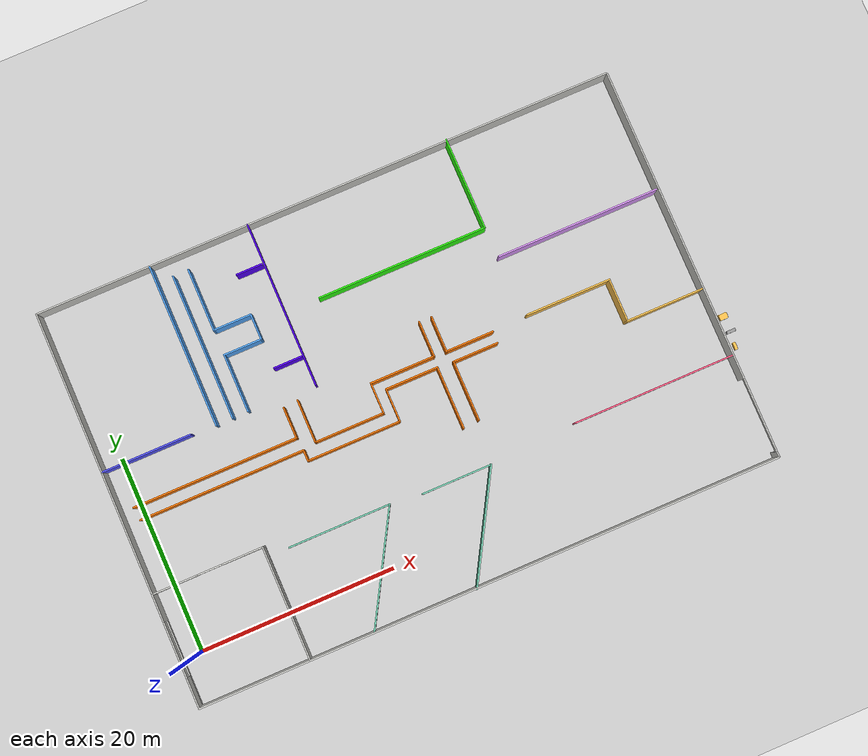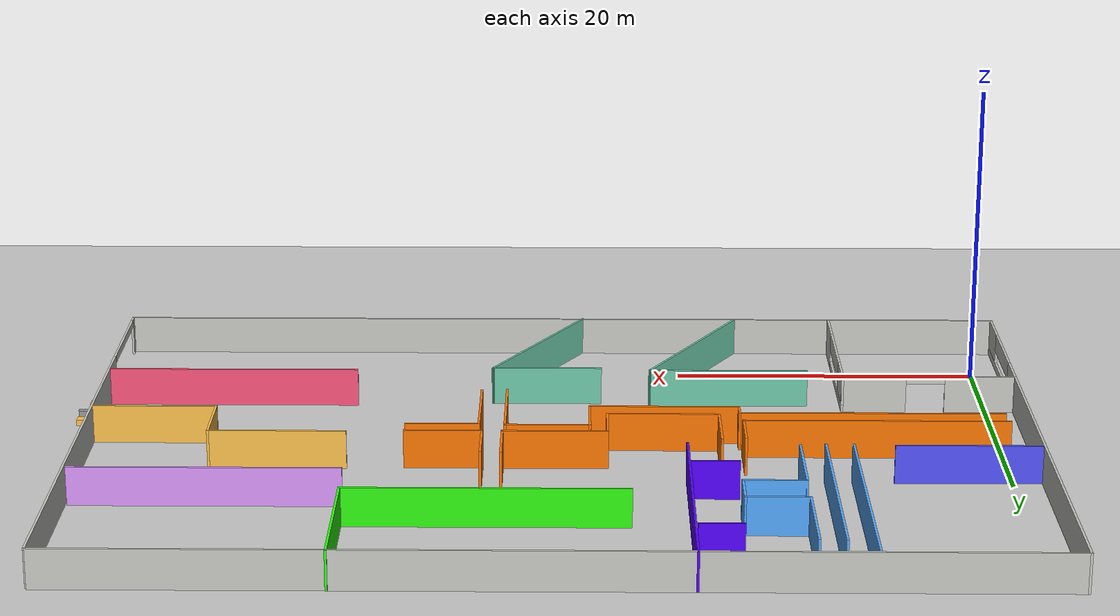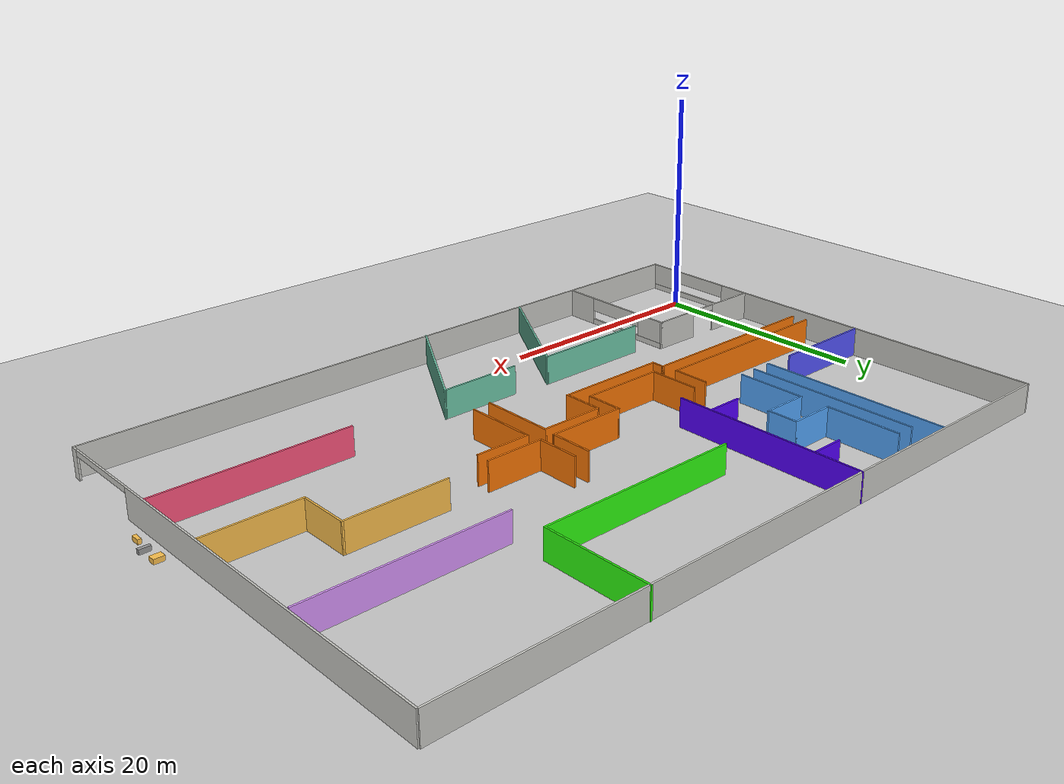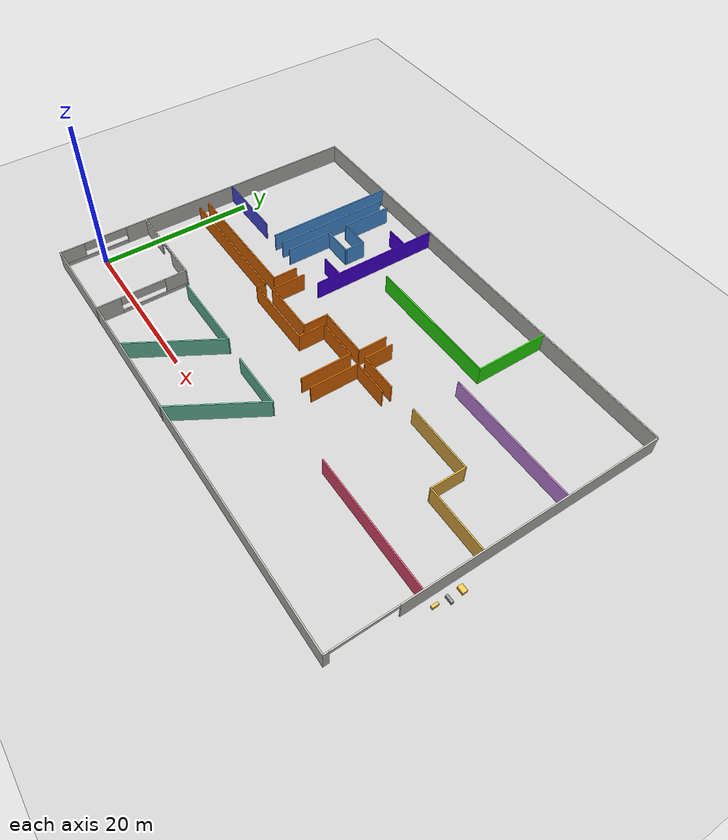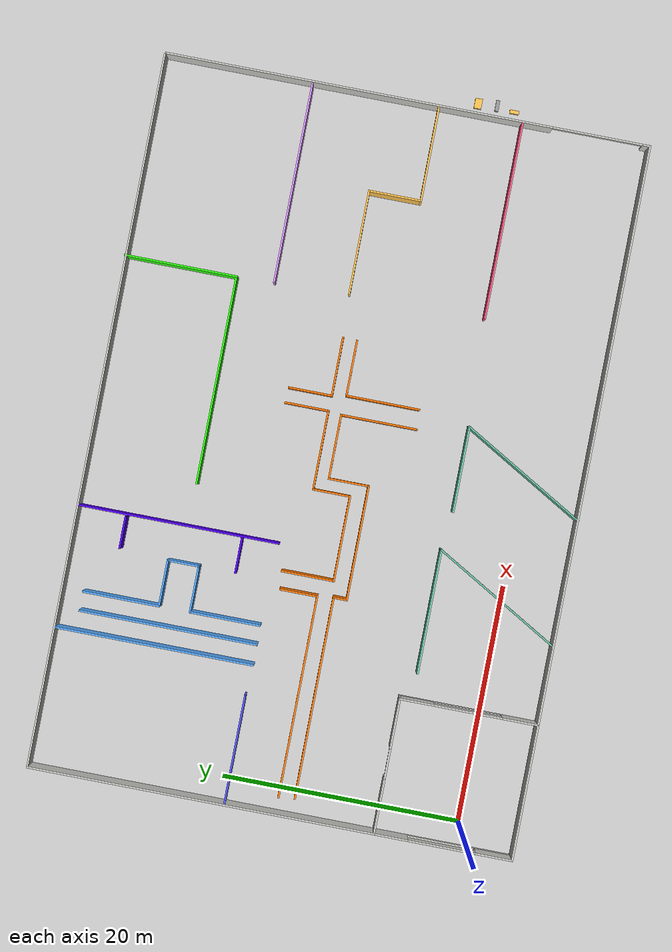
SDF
<sdf version="1.7">
 <world name="default">
  <model name="ground_plane">
   <static>1</static>
   <link name="link">
    <collision name="collision">
     <geometry><plane><normal>0 0 1</normal><size>100 100</size></plane></geometry>
     <surface><friction><ode><mu>100</mu><mu2>50</mu2></ode></friction></surface>
    </collision>
    <visual name="visual">
     <cast_shadows>0</cast_shadows>
     <geometry><plane><normal>0 0 1</normal><size>100 100</size></plane></geometry>
     <material>
      <script><uri>file://media/materials/scripts/gazebo.material</uri><name>Gazebo/Grey</name></script>
     </material>
    </visual>
   </link>
  </model>
  <model name="farm_mini">
   <pose>28.0296 15.582 0 0 -0 0</pose>
   <link name="Wall_100">
    <collision name="Wall_100_Collision">
     <geometry><box><size>9.69928 0.15 2.5</size></box></geometry>
     <pose>0 0 1.25 0 -0 0</pose>
    </collision>
    <visual name="Wall_100_Visual">
     <pose>0 0 1.25 0 -0 0</pose>
     <geometry><box><size>9.69928 0.15 2.5</size></box></geometry>
     <material>
      <script><uri>file://media/materials/scripts/gazebo.material</uri><name>Gazebo/Grey</name></script>
      <ambient>0.996078 0.47451 0.0196078 1</ambient>
     </material>
     <meta><layer>0</layer></meta>
    </visual>
    <pose>-6.70176 -2.90377 0 0 -0 0</pose>
   </link>
   <link name="Wall_103">
    <collision name="Wall_103_Collision">
     <geometry><box><size>7.25 0.15 2.5</size></box></geometry>
     <pose>0 0 1.25 0 -0 0</pose>
    </collision>
    <visual name="Wall_103_Visual">
     <pose>0 0 1.25 0 -0 0</pose>
     <geometry><box><size>7.25 0.15 2.5</size></box></geometry>
     <material>
      <script><uri>file://media/materials/scripts/gazebo.material</uri><name>Gazebo/Grey</name></script>
      <ambient>0.996078 0.47451 0.0196078 1</ambient>
     </material>
     <meta><layer>0</layer></meta>
    </visual>
    <pose>-6.59221 -1.55468 0 0 -0 0</pose>
   </link>
   <link name="Wall_104">
    <collision name="Wall_104_Collision">
     <geometry><box><size>3.25 0.15 2.5</size></box></geometry>
     <pose>0 0 1.25 0 -0 0</pose>
    </collision>
    <visual name="Wall_104_Visual">
     <pose>0 0 1.25 0 -0 0</pose>
     <geometry><box><size>3.25 0.15 2.5</size></box></geometry>
     <material>
      <script><uri>file://media/materials/scripts/gazebo.material</uri><name>Gazebo/Grey</name></script>
      <ambient>0.996078 0.47451 0.0196078 1</ambient>
     </material>
     <meta><layer>0</layer></meta>
    </visual>
    <pose>-3.04221 -0.00468 0 0 -0 1.5708</pose>
   </link>
   <link name="Wall_108">
    <collision name="Wall_108_Collision">
     <geometry><box><size>3.5 0.15 2.5</size></box></geometry>
     <pose>0 0 1.25 0 -0 0</pose>
    </collision>
    <visual name="Wall_108_Visual">
     <pose>0 0 1.25 0 -0 0</pose>
     <geometry><box><size>3.5 0.15 2.5</size></box></geometry>
     <material>
      <script><uri>file://media/materials/scripts/gazebo.material</uri><name>Gazebo/Grey</name></script>
      <ambient>0.996078 0.47451 0.0196078 1</ambient>
     </material>
     <meta><layer>0</layer></meta>
    </visual>
    <pose>-1.92712 -1.22877 0 0 -0 1.5708</pose>
   </link>
   <link name="Wall_109">
    <collision name="Wall_109_Collision">
     <geometry><box><size>5.5 0.15 2.5</size></box></geometry>
     <pose>0 0 1.25 0 -0 0</pose>
    </collision>
    <visual name="Wall_109_Visual">
     <pose>0 0 1.25 0 -0 0</pose>
     <geometry><box><size>5.5 0.15 2.5</size></box></geometry>
     <material>
      <script><uri>file://media/materials/scripts/gazebo.material</uri><name>Gazebo/Grey</name></script>
      <ambient>0.996078 0.47451 0.0196078 1</ambient>
     </material>
     <meta><layer>0</layer></meta>
    </visual>
    <pose>0.747884 0.446225 0 0 -0 0</pose>
   </link>
   <link name="Wall_110">
    <collision name="Wall_110_Collision">
     <geometry><box><size>6.5 0.15 2.5</size></box></geometry>
     <pose>0 0 1.25 0 -0 0</pose>
    </collision>
    <visual name="Wall_110_Visual">
     <pose>0 0 1.25 0 -0 0</pose>
     <geometry><box><size>6.5 0.15 2.5</size></box></geometry>
     <material>
      <script><uri>file://media/materials/scripts/gazebo.material</uri><name>Gazebo/Grey</name></script>
      <ambient>0.996078 0.47451 0.0196078 1</ambient>
     </material>
     <meta><layer>0</layer></meta>
    </visual>
    <pose>3.42288 -2.72877 0 0 -0 -1.5708</pose>
   </link>
   <link name="Wall_116">
    <collision name="Wall_116_Collision">
     <geometry><box><size>6.75 0.15 2.5</size></box></geometry>
     <pose>0 0 1.25 0 -0 0</pose>
    </collision>
    <visual name="Wall_116_Visual">
     <pose>0 0 1.25 0 -0 0</pose>
     <geometry><box><size>6.75 0.15 2.5</size></box></geometry>
     <material>
      <script><uri>file://media/materials/scripts/gazebo.material</uri><name>Gazebo/Grey</name></script>
      <ambient>0.996078 0.47451 0.0196078 1</ambient>
     </material>
     <meta><layer>0</layer></meta>
    </visual>
    <pose>0.257793 1.54532 0 0 -0 0</pose>
   </link>
   <link name="Wall_117">
    <collision name="Wall_117_Collision">
     <geometry><box><size>3.75 0.15 2.5</size></box></geometry>
     <pose>0 0 1.25 0 -0 0</pose>
    </collision>
    <visual name="Wall_117_Visual">
     <pose>0 0 1.25 0 -0 0</pose>
     <geometry><box><size>3.75 0.15 2.5</size></box></geometry>
     <material>
      <script><uri>file://media/materials/scripts/gazebo.material</uri><name>Gazebo/Grey</name></script>
      <ambient>0.996078 0.47451 0.0196078 1</ambient>
     </material>
     <meta><layer>0</layer></meta>
    </visual>
    <pose>3.55779 3.34532 0 0 -0 1.5708</pose>
   </link>
   <link name="Wall_119">
    <collision name="Wall_119_Collision">
     <geometry><box><size>3.75 0.15 2.5</size></box></geometry>
     <pose>0 0 1.25 0 -0 0</pose>
    </collision>
    <visual name="Wall_119_Visual">
     <pose>0 0 1.25 0 -0 0</pose>
     <geometry><box><size>3.75 0.15 2.5</size></box></geometry>
     <material>
      <script><uri>file://media/materials/scripts/gazebo.material</uri><name>Gazebo/Grey</name></script>
      <ambient>0.996078 0.47451 0.0196078 1</ambient>
     </material>
     <meta><layer>0</layer></meta>
    </visual>
    <pose>4.82979 3.30181 0 0 -0 -1.5708</pose>
   </link>
   <link name="Wall_120">
    <collision name="Wall_120_Collision">
     <geometry><box><size>5 0.15 2.5</size></box></geometry>
     <pose>0 0 1.25 0 -0 0</pose>
    </collision>
    <visual name="Wall_120_Visual">
     <pose>0 0 1.25 0 -0 0</pose>
     <geometry><box><size>5 0.15 2.5</size></box></geometry>
     <material>
      <script><uri>file://media/materials/scripts/gazebo.material</uri><name>Gazebo/Grey</name></script>
      <ambient>0.996078 0.47451 0.0196078 1</ambient>
     </material>
     <meta><layer>0</layer></meta>
    </visual>
    <pose>7.25479 1.50181 0 0 -0 0</pose>
   </link>
   <link name="Wall_122">
    <collision name="Wall_122_Collision">
     <geometry><box><size>6.25 0.15 2.5</size></box></geometry>
     <pose>0 0 1.25 0 -0 0</pose>
    </collision>
    <visual name="Wall_122_Visual">
     <pose>0 0 1.25 0 -0 0</pose>
     <geometry><box><size>6.25 0.15 2.5</size></box></geometry>
     <material>
      <script><uri>file://media/materials/scripts/gazebo.material</uri><name>Gazebo/Grey</name></script>
      <ambient>0.996078 0.47451 0.0196078 1</ambient>
     </material>
     <meta><layer>0</layer></meta>
    </visual>
    <pose>5.06119 -2.73056 0 0 -0 -1.5708</pose>
   </link>
   <link name="Wall_124">
    <collision name="Wall_124_Collision">
     <geometry><box><size>4.75 0.15 2.5</size></box></geometry>
     <pose>0 0 1.25 0 -0 0</pose>
    </collision>
    <visual name="Wall_124_Visual">
     <pose>0 0 1.25 0 -0 0</pose>
     <geometry><box><size>4.75 0.15 2.5</size></box></geometry>
     <material>
      <script><uri>file://media/materials/scripts/gazebo.material</uri><name>Gazebo/Grey</name></script>
      <ambient>0.996078 0.47451 0.0196078 1</ambient>
     </material>
     <meta><layer>0</layer></meta>
    </visual>
    <pose>7.36119 0.319443 0 0 -0 0</pose>
   </link>
   <link name="Wall_126">
    <collision name="Wall_126_Collision">
     <geometry><box><size>1.25 0.15 2.5</size></box></geometry>
     <pose>0 0 1.25 0 -0 0</pose>
    </collision>
    <visual name="Wall_126_Visual">
     <pose>0 0 1.25 0 -0 0</pose>
     <geometry><box><size>1.25 0.15 2.5</size></box></geometry>
     <material>
      <script><uri>file://media/materials/scripts/gazebo.material</uri><name>Gazebo/Grey</name></script>
      <ambient>0.996078 0.47451 0.0196078 1</ambient>
     </material>
     <meta><layer>0</layer></meta>
    </visual>
    <pose>-11.4764 -2.35377 0 0 -0 -1.5708</pose>
   </link>
   <link name="Wall_129">
    <collision name="Wall_129_Collision">
     <geometry><box><size>4.5 0.15 2.5</size></box></geometry>
     <pose>0 0 1.25 0 -0 0</pose>
    </collision>
    <visual name="Wall_129_Visual">
     <pose>0 0 1.25 0 -0 0</pose>
     <geometry><box><size>4.5 0.15 2.5</size></box></geometry>
     <material>
      <script><uri>file://media/materials/scripts/gazebo.material</uri><name>Gazebo/Grey</name></script>
      <ambient>0.996078 0.47451 0.0196078 1</ambient>
     </material>
     <meta><layer>0</layer></meta>
    </visual>
    <pose>-10.1422 0.62032 0 0 -0 1.5708</pose>
   </link>
   <link name="Wall_131">
    <collision name="Wall_131_Collision">
     <geometry><box><size>3.25 0.15 2.5</size></box></geometry>
     <pose>0 0 1.25 0 -0 0</pose>
    </collision>
    <visual name="Wall_131_Visual">
     <pose>0 0 1.25 0 -0 0</pose>
     <geometry><box><size>3.25 0.15 2.5</size></box></geometry>
     <material>
      <script><uri>file://media/materials/scripts/gazebo.material</uri><name>Gazebo/Grey</name></script>
      <ambient>0.996078 0.47451 0.0196078 1</ambient>
     </material>
     <meta><layer>0</layer></meta>
    </visual>
    <pose>-11.6422 1.09532 0 0 -0 1.5708</pose>
   </link>
   <link name="Wall_26">
    <collision name="Wall_26_Collision">
     <geometry><box><size>11.5 0.15 2.5</size></box></geometry>
     <pose>0 0 1.25 0 -0 0</pose>
    </collision>
    <visual name="Wall_26_Visual">
     <pose>0 0 1.25 0 -0 0</pose>
     <geometry><box><size>11.5 0.15 2.5</size></box></geometry>
     <material>
      <script><uri>file://media/materials/scripts/gazebo.material</uri><name>Gazebo/CeilingTiled</name></script>
      <ambient>0 0.333333 1 1</ambient>
     </material>
     <meta><layer>0</layer></meta>
    </visual>
    <pose>-24.3 -20.3518 0 0 -0 0</pose>
   </link>
   <link name="Wall_27">
    <pose>-18.625 -14.5518 0 0 -0 1.5708</pose>
    <visual name="Wall_27_Visual_0">
     <pose>-4.32558 0 1.25 0 -0 0</pose>
     <geometry><box><size>3.09884 0.15 2.5</size></box></geometry>
     <material>
      <script><uri>file://media/materials/scripts/gazebo.material</uri><name>Gazebo/CeilingTiled</name></script>
      <ambient>0 0.333333 1 1</ambient>
     </material>
     <meta><layer>0</layer></meta>
    </visual>
    <collision name="Wall_27_Collision_0">
     <geometry><box><size>3.09884 0.15 2.5</size></box></geometry>
     <pose>-4.32558 0 1.25 0 -0 0</pose>
    </collision>
    <visual name="Wall_27_Visual_1">
     <pose>1.54942 0 0.25 0 -0 0</pose>
     <geometry><box><size>8.65116 0.15 0.5</size></box></geometry>
     <material>
      <script><uri>file://media/materials/scripts/gazebo.material</uri><name>Gazebo/CeilingTiled</name></script>
      <ambient>0 0.333333 1 1</ambient>
     </material>
     <meta><layer>0</layer></meta>
    </visual>
    <collision name="Wall_27_Collision_1">
     <geometry><box><size>8.65116 0.15 0.5</size></box></geometry>
     <pose>1.54942 0 0.25 0 -0 0</pose>
    </collision>
    <visual name="Wall_27_Visual_2">
     <pose>4.41939 0 1.5 0 -0 0</pose>
     <geometry><box><size>2.91121 0.15 2</size></box></geometry>
     <material>
      <script><uri>file://media/materials/scripts/gazebo.material</uri><name>Gazebo/CeilingTiled</name></script>
      <ambient>0 0.333333 1 1</ambient>
     </material>
     <meta><layer>0</layer></meta>
    </visual>
    <collision name="Wall_27_Collision_2">
     <geometry><box><size>2.91121 0.15 2</size></box></geometry>
     <pose>4.41939 0 1.5 0 -0 0</pose>
    </collision>
    <visual name="Wall_27_Visual_3">
     <pose>0.093817 0 1.9 0 -0 0</pose>
     <geometry><box><size>5.73995 0.15 1.2</size></box></geometry>
     <material>
      <script><uri>file://media/materials/scripts/gazebo.material</uri><name>Gazebo/CeilingTiled</name></script>
      <ambient>0 0.333333 1 1</ambient>
     </material>
     <meta><layer>0</layer></meta>
    </visual>
    <collision name="Wall_27_Collision_3">
     <geometry><box><size>5.73995 0.15 1.2</size></box></geometry>
     <pose>0.093817 0 1.9 0 -0 0</pose>
    </collision>
   </link>
   <link name="Wall_28">
    <pose>-24.3 -8.75179 0 0 -0 3.14159</pose>
    <visual name="Wall_28_Visual_0">
     <pose>-3.6232 0 1.25 0 -0 0</pose>
     <geometry><box><size>4.25359 0.15 2.5</size></box></geometry>
     <material>
      <script><uri>file://media/materials/scripts/gazebo.material</uri><name>Gazebo/CeilingTiled</name></script>
      <ambient>0 0.333333 1 1</ambient>
     </material>
     <meta><layer>0</layer></meta>
    </visual>
    <collision name="Wall_28_Collision_0">
     <geometry><box><size>4.25359 0.15 2.5</size></box></geometry>
     <pose>-3.6232 0 1.25 0 -0 0</pose>
    </collision>
    <visual name="Wall_28_Visual_1">
     <pose>3.40012 0 1.25 0 -0 0</pose>
     <geometry><box><size>4.69976 0.15 2.5</size></box></geometry>
     <material>
      <script><uri>file://media/materials/scripts/gazebo.material</uri><name>Gazebo/CeilingTiled</name></script>
      <ambient>0 0.333333 1 1</ambient>
     </material>
     <meta><layer>0</layer></meta>
    </visual>
    <collision name="Wall_28_Collision_1">
     <geometry><box><size>4.69976 0.15 2.5</size></box></geometry>
     <pose>3.40012 0 1.25 0 -0 0</pose>
    </collision>
    <visual name="Wall_28_Visual_2">
     <pose>-0.223083 0 2.25 0 -0 0</pose>
     <geometry><box><size>2.54665 0.15 0.5</size></box></geometry>
     <material>
      <script><uri>file://media/materials/scripts/gazebo.material</uri><name>Gazebo/CeilingTiled</name></script>
      <ambient>0 0.333333 1 1</ambient>
     </material>
     <meta><layer>0</layer></meta>
    </visual>
    <collision name="Wall_28_Collision_2">
     <geometry><box><size>2.54665 0.15 0.5</size></box></geometry>
     <pose>-0.223083 0 2.25 0 -0 0</pose>
    </collision>
   </link>
   <link name="Wall_29">
    <pose>-29.975 -14.5518 0 0 -0 -1.5708</pose>
    <visual name="Wall_29_Visual_0">
     <pose>-4.41939 0 1.25 0 -0 0</pose>
     <geometry><box><size>2.91121 0.15 2.5</size></box></geometry>
     <material>
      <script><uri>file://media/materials/scripts/gazebo.material</uri><name>Gazebo/CeilingTiled</name></script>
      <ambient>0 0.333333 1 1</ambient>
     </material>
     <meta><layer>0</layer></meta>
    </visual>
    <collision name="Wall_29_Collision_0">
     <geometry><box><size>2.91121 0.15 2.5</size></box></geometry>
     <pose>-4.41939 0 1.25 0 -0 0</pose>
    </collision>
    <visual name="Wall_29_Visual_1">
     <pose>1.45561 0 0.25 0 -0 0</pose>
     <geometry><box><size>8.83879 0.15 0.5</size></box></geometry>
     <material>
      <script><uri>file://media/materials/scripts/gazebo.material</uri><name>Gazebo/CeilingTiled</name></script>
      <ambient>0 0.333333 1 1</ambient>
     </material>
     <meta><layer>0</layer></meta>
    </visual>
    <collision name="Wall_29_Collision_1">
     <geometry><box><size>8.83879 0.15 0.5</size></box></geometry>
     <pose>1.45561 0 0.25 0 -0 0</pose>
    </collision>
    <visual name="Wall_29_Visual_2">
     <pose>4.29127 0 1.5 0 -0 0</pose>
     <geometry><box><size>3.16745 0.15 2</size></box></geometry>
     <material>
      <script><uri>file://media/materials/scripts/gazebo.material</uri><name>Gazebo/CeilingTiled</name></script>
      <ambient>0 0.333333 1 1</ambient>
     </material>
     <meta><layer>0</layer></meta>
    </visual>
    <collision name="Wall_29_Collision_2">
     <geometry><box><size>3.16745 0.15 2</size></box></geometry>
     <pose>4.29127 0 1.5 0 -0 0</pose>
    </collision>
    <visual name="Wall_29_Visual_3">
     <pose>-0.128122 0 1.9 0 -0 0</pose>
     <geometry><box><size>5.67134 0.15 1.2</size></box></geometry>
     <material>
      <script><uri>file://media/materials/scripts/gazebo.material</uri><name>Gazebo/CeilingTiled</name></script>
      <ambient>0 0.333333 1 1</ambient>
     </material>
     <meta><layer>0</layer></meta>
    </visual>
    <collision name="Wall_29_Collision_3">
     <geometry><box><size>5.67134 0.15 1.2</size></box></geometry>
     <pose>-0.128122 0 1.9 0 -0 0</pose>
    </collision>
   </link>
   <link name="Wall_43">
    <collision name="Wall_43_Collision">
     <geometry><box><size>29.25 0.15 2.5</size></box></geometry>
     <pose>0 0 1.25 0 -0 0</pose>
    </collision>
    <visual name="Wall_43_Visual">
     <pose>0 0 1.25 0 -0 0</pose>
     <geometry><box><size>29.25 0.15 2.5</size></box></geometry>
     <material>
      <script><uri>file://media/materials/scripts/gazebo.material</uri><name>Gazebo/CeilingTiled</name></script>
      <ambient>1 0.666667 0.498039 1</ambient>
     </material>
     <meta><layer>0</layer></meta>
    </visual>
    <pose>-29.975 5.79821 0 0 -0 1.5708</pose>
   </link>
   <link name="Wall_44">
    <collision name="Wall_44_Collision">
     <geometry><box><size>60 0.15 2.5</size></box></geometry>
     <pose>0 0 1.25 0 -0 0</pose>
    </collision>
    <visual name="Wall_44_Visual">
     <pose>0 0 1.25 0 -0 0</pose>
     <geometry><box><size>60 0.15 2.5</size></box></geometry>
     <material>
      <script><uri>file://media/materials/scripts/gazebo.material</uri><name>Gazebo/CeilingTiled</name></script>
      <ambient>1 0.666667 0.498039 1</ambient>
     </material>
     <meta><layer>0</layer></meta>
    </visual>
    <pose>-0.049998 20.3482 0 0 -0 0</pose>
   </link>
   <link name="Wall_47">
    <collision name="Wall_47_Collision">
     <geometry><box><size>48.75 0.15 2.5</size></box></geometry>
     <pose>0 0 1.25 0 -0 0</pose>
    </collision>
    <visual name="Wall_47_Visual">
     <pose>0 0 1.25 0 -0 0</pose>
     <geometry><box><size>48.75 0.15 2.5</size></box></geometry>
     <material>
      <script><uri>file://media/materials/scripts/gazebo.material</uri><name>Gazebo/CeilingTiled</name></script>
      <ambient>1 0.666667 0.498039 1</ambient>
     </material>
     <meta><layer>0</layer></meta>
    </visual>
    <pose>5.675 -20.3518 0 0 -0 0</pose>
   </link>
   <link name="Wall_49">
    <pose>29.975 -0.05179 0 0 -0 1.5708</pose>
    <visual name="Wall_49_Visual_0">
     <pose>-20.0365 0 1.25 0 -0 0</pose>
     <geometry><box><size>0.676976 0.15 2.5</size></box></geometry>
     <material>
      <script><uri>file://media/materials/scripts/gazebo.material</uri><name>Gazebo/CeilingTiled</name></script>
      <ambient>0.996078 0.47451 0.0196078 1</ambient>
     </material>
     <meta><layer>0</layer></meta>
    </visual>
    <collision name="Wall_49_Collision_0">
     <geometry><box><size>0.676976 0.15 2.5</size></box></geometry>
     <pose>-20.0365 0 1.25 0 -0 0</pose>
    </collision>
    <visual name="Wall_49_Visual_1">
     <pose>4.12412 0 1.25 0 -0 0</pose>
     <geometry><box><size>32.5018 0.15 2.5</size></box></geometry>
     <material>
      <script><uri>file://media/materials/scripts/gazebo.material</uri><name>Gazebo/CeilingTiled</name></script>
      <ambient>0.996078 0.47451 0.0196078 1</ambient>
     </material>
     <meta><layer>0</layer></meta>
    </visual>
    <collision name="Wall_49_Collision_1">
     <geometry><box><size>32.5018 0.15 2.5</size></box></geometry>
     <pose>4.12412 0 1.25 0 -0 0</pose>
    </collision>
    <visual name="Wall_49_Visual_2">
     <pose>-15.9124 0 2.25 0 -0 0</pose>
     <geometry><box><size>7.57127 0.15 0.5</size></box></geometry>
     <material>
      <script><uri>file://media/materials/scripts/gazebo.material</uri><name>Gazebo/CeilingTiled</name></script>
      <ambient>0.996078 0.47451 0.0196078 1</ambient>
     </material>
     <meta><layer>0</layer></meta>
    </visual>
    <collision name="Wall_49_Collision_2">
     <geometry><box><size>7.57127 0.15 0.5</size></box></geometry>
     <pose>-15.9124 0 2.25 0 -0 0</pose>
    </collision>
   </link>
   <link name="Wall_53">
    <collision name="Wall_53_Collision">
     <geometry><box><size>16.75 0.15 2.5</size></box></geometry>
     <pose>0 0 1.25 0 -0 0</pose>
    </collision>
    <visual name="Wall_53_Visual">
     <pose>0 0 1.25 0 -0 0</pose>
     <geometry><box><size>16.75 0.15 2.5</size></box></geometry>
     <material>
      <script><uri>file://media/materials/scripts/gazebo.material</uri><name>Gazebo/Grey</name></script>
      <ambient>0.866667 0.596078 1 1</ambient>
     </material>
     <meta><layer>0</layer></meta>
    </visual>
    <pose>21.443 7.9453 0 0 -0 0</pose>
   </link>
   <link name="Wall_55">
    <collision name="Wall_55_Collision">
     <geometry><box><size>9.5 0.15 2.5</size></box></geometry>
     <pose>0 0 1.25 0 -0 0</pose>
    </collision>
    <visual name="Wall_55_Visual">
     <pose>0 0 1.25 0 -0 0</pose>
     <geometry><box><size>9.5 0.15 2.5</size></box></geometry>
     <material>
      <script><uri>file://media/materials/scripts/gazebo.material</uri><name>Gazebo/Grey</name></script>
      <ambient>0.188235 1 0.0666667 1</ambient>
     </material>
     <meta><layer>0</layer></meta>
    </visual>
    <pose>12.987 15.7525 0 0 -0 -1.5708</pose>
   </link>
   <link name="Wall_57">
    <collision name="Wall_57_Collision">
     <geometry><box><size>8 0.15 2.5</size></box></geometry>
     <pose>0 0 1.25 0 -0 0</pose>
    </collision>
    <visual name="Wall_57_Visual">
     <pose>0 0 1.25 0 -0 0</pose>
     <geometry><box><size>8 0.15 2.5</size></box></geometry>
     <material>
      <script><uri>file://media/materials/scripts/gazebo.material</uri><name>Gazebo/Grey</name></script>
      <ambient>1 0.764706 0.305882 1</ambient>
     </material>
     <meta><layer>0</layer></meta>
    </visual>
    <pose>25.9129 -2.66452 0 0 -0 3.14159</pose>
   </link>
   <link name="Wall_58">
    <collision name="Wall_58_Collision">
     <geometry><box><size>4.5 0.15 2.5</size></box></geometry>
     <pose>0 0 1.25 0 -0 0</pose>
    </collision>
    <visual name="Wall_58_Visual">
     <pose>0 0 1.25 0 -0 0</pose>
     <geometry><box><size>4.5 0.15 2.5</size></box></geometry>
     <material>
      <script><uri>file://media/materials/scripts/gazebo.material</uri><name>Gazebo/Grey</name></script>
      <ambient>1 0.764706 0.305882 1</ambient>
     </material>
     <meta><layer>0</layer></meta>
    </visual>
    <pose>21.9879 -0.489521 0 0 -0 1.5708</pose>
   </link>
   <link name="Wall_59">
    <collision name="Wall_59_Collision">
     <geometry><box><size>8.75 0.15 2.5</size></box></geometry>
     <pose>0 0 1.25 0 -0 0</pose>
    </collision>
    <visual name="Wall_59_Visual">
     <pose>0 0 1.25 0 -0 0</pose>
     <geometry><box><size>8.75 0.15 2.5</size></box></geometry>
     <material>
      <script><uri>file://media/materials/scripts/gazebo.material</uri><name>Gazebo/Grey</name></script>
      <ambient>1 0.764706 0.305882 1</ambient>
     </material>
     <meta><layer>0</layer></meta>
    </visual>
    <pose>17.6879 1.68548 0 0 -0 3.14159</pose>
   </link>
   <link name="Wall_61">
    <collision name="Wall_61_Collision">
     <geometry><box><size>16.5 0.15 2.5</size></box></geometry>
     <pose>0 0 1.25 0 -0 0</pose>
    </collision>
    <visual name="Wall_61_Visual">
     <pose>0 0 1.25 0 -0 0</pose>
     <geometry><box><size>16.5 0.15 2.5</size></box></geometry>
     <material>
      <script><uri>file://media/materials/scripts/gazebo.material</uri><name>Gazebo/Grey</name></script>
      <ambient>1 0.333333 0.498039 1</ambient>
     </material>
     <meta><layer>0</layer></meta>
    </visual>
    <pose>21.6629 -9.68573 0 0 -0 3.14159</pose>
   </link>
   <link name="Wall_64">
    <collision name="Wall_64_Collision">
     <geometry><box><size>16.75 0.15 2.5</size></box></geometry>
     <pose>0 0 1.25 0 -0 0</pose>
    </collision>
    <visual name="Wall_64_Visual">
     <pose>0 0 1.25 0 -0 0</pose>
     <geometry><box><size>16.75 0.15 2.5</size></box></geometry>
     <material>
      <script><uri>file://media/materials/scripts/gazebo.material</uri><name>Gazebo/Grey</name></script>
      <ambient>0.333333 0.666667 1 1</ambient>
     </material>
     <meta><layer>0</layer></meta>
    </visual>
    <pose>-18.2184 11.9714 0 0 -0 -1.5708</pose>
   </link>
   <link name="Wall_67">
    <collision name="Wall_67_Collision">
     <geometry><box><size>15 0.15 2.5</size></box></geometry>
     <pose>0 0 1.25 0 -0 0</pose>
    </collision>
    <visual name="Wall_67_Visual">
     <pose>0 0 1.25 0 -0 0</pose>
     <geometry><box><size>15 0.15 2.5</size></box></geometry>
     <material>
      <script><uri>file://media/materials/scripts/gazebo.material</uri><name>Gazebo/Grey</name></script>
      <ambient>0.333333 0.666667 1 1</ambient>
     </material>
     <meta><layer>0</layer></meta>
    </visual>
    <pose>-16.5021 11.1274 0 0 -0 1.5708</pose>
   </link>
   <link name="Wall_69">
    <collision name="Wall_69_Collision">
     <geometry><box><size>6.5 0.15 2.5</size></box></geometry>
     <pose>0 0 1.25 0 -0 0</pose>
    </collision>
    <visual name="Wall_69_Visual">
     <pose>0 0 1.25 0 -0 0</pose>
     <geometry><box><size>6.5 0.15 2.5</size></box></geometry>
     <material>
      <script><uri>file://media/materials/scripts/gazebo.material</uri><name>Gazebo/Grey</name></script>
      <ambient>0.333333 0.666667 1 1</ambient>
     </material>
     <meta><layer>0</layer></meta>
    </visual>
    <pose>-14.9021 15.3774 0 0 -0 -1.5708</pose>
   </link>
   <link name="Wall_70">
    <collision name="Wall_70_Collision">
     <geometry><box><size>4 0.15 2.5</size></box></geometry>
     <pose>0 0 1.25 0 -0 0</pose>
    </collision>
    <visual name="Wall_70_Visual">
     <pose>0 0 1.25 0 -0 0</pose>
     <geometry><box><size>4 0.15 2.5</size></box></geometry>
     <material>
      <script><uri>file://media/materials/scripts/gazebo.material</uri><name>Gazebo/Grey</name></script>
      <ambient>0.333333 0.666667 1 1</ambient>
     </material>
     <meta><layer>0</layer></meta>
    </visual>
    <pose>-12.9771 12.2024 0 0 -0 0</pose>
   </link>
   <link name="Wall_71">
    <collision name="Wall_71_Collision">
     <geometry><box><size>2.75 0.15 2.5</size></box></geometry>
     <pose>0 0 1.25 0 -0 0</pose>
    </collision>
    <visual name="Wall_71_Visual">
     <pose>0 0 1.25 0 -0 0</pose>
     <geometry><box><size>2.75 0.15 2.5</size></box></geometry>
     <material>
      <script><uri>file://media/materials/scripts/gazebo.material</uri><name>Gazebo/Grey</name></script>
      <ambient>0.333333 0.666667 1 1</ambient>
     </material>
     <meta><layer>0</layer></meta>
    </visual>
    <pose>-11.0521 10.9024 0 0 -0 -1.5708</pose>
   </link>
   <link name="Wall_72">
    <collision name="Wall_72_Collision">
     <geometry><box><size>4 0.15 2.5</size></box></geometry>
     <pose>0 0 1.25 0 -0 0</pose>
    </collision>
    <visual name="Wall_72_Visual">
     <pose>0 0 1.25 0 -0 0</pose>
     <geometry><box><size>4 0.15 2.5</size></box></geometry>
     <material>
      <script><uri>file://media/materials/scripts/gazebo.material</uri><name>Gazebo/Grey</name></script>
      <ambient>0.333333 0.666667 1 1</ambient>
     </material>
     <meta><layer>0</layer></meta>
    </visual>
    <pose>-12.9771 9.60244 0 0 -0 3.14159</pose>
   </link>
   <link name="Wall_73">
    <collision name="Wall_73_Collision">
     <geometry><box><size>6 0.15 2.5</size></box></geometry>
     <pose>0 0 1.25 0 -0 0</pose>
    </collision>
    <visual name="Wall_73_Visual">
     <pose>0 0 1.25 0 -0 0</pose>
     <geometry><box><size>6 0.15 2.5</size></box></geometry>
     <material>
      <script><uri>file://media/materials/scripts/gazebo.material</uri><name>Gazebo/Grey</name></script>
      <ambient>0.333333 0.666667 1 1</ambient>
     </material>
     <meta><layer>0</layer></meta>
    </visual>
    <pose>-14.9021 6.67744 0 0 -0 -1.5708</pose>
   </link>
   <link name="Wall_77">
    <collision name="Wall_77_Collision">
     <geometry><box><size>17 0.15 2.5</size></box></geometry>
     <pose>0 0 1.25 0 -0 0</pose>
    </collision>
    <visual name="Wall_77_Visual">
     <pose>0 0 1.25 0 -0 0</pose>
     <geometry><box><size>17 0.15 2.5</size></box></geometry>
     <material>
      <script><uri>file://media/materials/scripts/gazebo.material</uri><name>Gazebo/Grey</name></script>
      <ambient>0.333333 0 1 1</ambient>
     </material>
     <meta><layer>0</layer></meta>
    </visual>
    <pose>-7.96607 11.9326 0 0 -0 -1.5708</pose>
   </link>
   <link name="Wall_79">
    <collision name="Wall_79_Collision">
     <geometry><box><size>3 0.15 2.5</size></box></geometry>
     <pose>0 0 1.25 0 -0 0</pose>
    </collision>
    <visual name="Wall_79_Visual">
     <pose>0 0 1.25 0 -0 0</pose>
     <geometry><box><size>3 0.15 2.5</size></box></geometry>
     <material>
      <script><uri>file://media/materials/scripts/gazebo.material</uri><name>Gazebo/Grey</name></script>
      <ambient>0.333333 0 1 1</ambient>
     </material>
     <meta><layer>0</layer></meta>
    </visual>
    <pose>-9.5705 6.5414 0 0 -0 3.14159</pose>
   </link>
   <link name="Wall_81">
    <collision name="Wall_81_Collision">
     <geometry><box><size>2.75 0.15 2.5</size></box></geometry>
     <pose>0 0 1.25 0 -0 0</pose>
    </collision>
    <visual name="Wall_81_Visual">
     <pose>0 0 1.25 0 -0 0</pose>
     <geometry><box><size>2.75 0.15 2.5</size></box></geometry>
     <material>
      <script><uri>file://media/materials/scripts/gazebo.material</uri><name>Gazebo/Grey</name></script>
      <ambient>0.333333 0 1 1</ambient>
     </material>
     <meta><layer>0</layer></meta>
    </visual>
    <pose>-9.48742 16.29 0 0 -0 3.14159</pose>
   </link>
   <link name="Wall_83">
    <collision name="Wall_83_Collision">
     <geometry><box><size>9.25 0.15 2.5</size></box></geometry>
     <pose>0 0 1.25 0 -0 0</pose>
    </collision>
    <visual name="Wall_83_Visual">
     <pose>0 0 1.25 0 -0 0</pose>
     <geometry><box><size>9.25 0.15 2.5</size></box></geometry>
     <material>
      <script><uri>file://media/materials/scripts/gazebo.material</uri><name>Gazebo/Grey</name></script>
      <ambient>0.333333 0.333333 1 1</ambient>
     </material>
     <meta><layer>0</layer></meta>
    </visual>
    <pose>-25.3842 3.8272 0 0 -0 0</pose>
   </link>
   <link name="Wall_85">
    <collision name="Wall_85_Collision">
     <geometry><box><size>12.25 0.15 2.5</size></box></geometry>
     <pose>0 0 1.25 0 -0 0</pose>
    </collision>
    <visual name="Wall_85_Visual">
     <pose>0 0 1.25 0 -0 0</pose>
     <geometry><box><size>12.25 0.15 2.5</size></box></geometry>
     <material>
      <script><uri>file://media/materials/scripts/gazebo.material</uri><name>Gazebo/Grey</name></script>
      <ambient>0.435294 0.796078 0.67451 1</ambient>
     </material>
     <meta><layer>0</layer></meta>
    </visual>
    <pose>-8.9743 -15.0256 0 0 -0 1.0472</pose>
   </link>
   <link name="Wall_87">
    <collision name="Wall_87_Collision">
     <geometry><box><size>12 0.15 2.5</size></box></geometry>
     <pose>0 0 1.25 0 -0 0</pose>
    </collision>
    <visual name="Wall_87_Visual">
     <pose>0 0 1.25 0 -0 0</pose>
     <geometry><box><size>12 0.15 2.5</size></box></geometry>
     <material>
      <script><uri>file://media/materials/scripts/gazebo.material</uri><name>Gazebo/Grey</name></script>
      <ambient>0.435294 0.796078 0.67451 1</ambient>
     </material>
     <meta><layer>0</layer></meta>
    </visual>
    <pose>1.48614 -15.2688 0 0 -0 1.0472</pose>
   </link>
   <link name="Wall_88">
    <collision name="Wall_88_Collision">
     <geometry><box><size>7.25 0.15 2.5</size></box></geometry>
     <pose>0 0 1.25 0 -0 0</pose>
    </collision>
    <visual name="Wall_88_Visual">
     <pose>0 0 1.25 0 -0 0</pose>
     <geometry><box><size>7.25 0.15 2.5</size></box></geometry>
     <material>
      <script><uri>file://media/materials/scripts/gazebo.material</uri><name>Gazebo/Grey</name></script>
      <ambient>0.435294 0.796078 0.67451 1</ambient>
     </material>
     <meta><layer>0</layer></meta>
    </visual>
    <pose>0.898635 -10.1376 0 0 -0 3.14159</pose>
   </link>
   <link name="Wall_91">
    <collision name="Wall_91_Collision">
     <geometry><box><size>10.5 0.15 2.5</size></box></geometry>
     <pose>0 0 1.25 0 -0 0</pose>
    </collision>
    <visual name="Wall_91_Visual">
     <pose>0 0 1.25 0 -0 0</pose>
     <geometry><box><size>10.5 0.15 2.5</size></box></geometry>
     <material>
      <script><uri>file://media/materials/scripts/gazebo.material</uri><name>Gazebo/Grey</name></script>
      <ambient>0.435294 0.796078 0.67451 1</ambient>
     </material>
     <meta><layer>0</layer></meta>
    </visual>
    <pose>-11.1243 -9.78618 0 0 -0 3.14159</pose>
   </link>
   <link name="Wall_94">
    <collision name="Wall_94_Collision">
     <geometry><box><size>17.5 0.15 2.5</size></box></geometry>
     <pose>0 0 1.25 0 -0 0</pose>
    </collision>
    <visual name="Wall_94_Visual">
     <pose>0 0 1.25 0 -0 0</pose>
     <geometry><box><size>17.5 0.15 2.5</size></box></geometry>
     <material>
      <script><uri>file://media/materials/scripts/gazebo.material</uri><name>Gazebo/Grey</name></script>
      <ambient>0.188235 1 0.0666667 1</ambient>
     </material>
     <meta><layer>0</layer></meta>
    </visual>
    <pose>4.31195 11.0775 0 0 -0 3.14159</pose>
   </link>
   <link name="Wall_96">
    <collision name="Wall_96_Collision">
     <geometry><box><size>17 0.15 2.5</size></box></geometry>
     <pose>0 0 1.25 0 -0 0</pose>
    </collision>
    <visual name="Wall_96_Visual">
     <pose>0 0 1.25 0 -0 0</pose>
     <geometry><box><size>17 0.15 2.5</size></box></geometry>
     <material>
      <script><uri>file://media/materials/scripts/gazebo.material</uri><name>Gazebo/Grey</name></script>
      <ambient>0.996078 0.47451 0.0196078 1</ambient>
     </material>
     <meta><layer>0</layer></meta>
    </visual>
    <pose>-20.0672 -0.45468 0 0 -0 0</pose>
   </link>
   <link name="Wall_98">
    <collision name="Wall_98_Collision">
     <geometry><box><size>17 0.15 2.5</size></box></geometry>
     <pose>0 0 1.25 0 -0 0</pose>
    </collision>
    <visual name="Wall_98_Visual">
     <pose>0 0 1.25 0 -0 0</pose>
     <geometry><box><size>17 0.15 2.5</size></box></geometry>
     <material>
      <script><uri>file://media/materials/scripts/gazebo.material</uri><name>Gazebo/Grey</name></script>
      <ambient>0.996078 0.47451 0.0196078 1</ambient>
     </material>
     <meta><layer>0</layer></meta>
    </visual>
    <pose>-19.9014 -1.80377 0 0 -0 0</pose>
   </link>
   <static>1</static>
  </model>
  <model name="Box_15x30_0_clone_clone">
   <link name="Wall">
    <pose>0 0 0.1985 0 -0 0</pose>
    <inertial>
     <mass>5</mass>
     <inertia><ixx>0.3089</ixx><iyy>0.1022</iyy><izz>0.2797</izz><ixy>0</ixy><ixz>0</ixz><iyz>0</iyz></inertia>
    </inertial>
    <collision name="Wall_Collision"><geometry><box><size>0.296 0.764 0.397</size></box></geometry></collision>
    <visual name="Wall_Visual">
     <geometry><box><size>0.296 0.764 0.397</size></box></geometry>
     <material>
      <script><uri>file://media/materials/scripts/gazebo.material</uri><name>Gazebo/Grey</name></script>
      <ambient>1 0.764706 0.305882 1</ambient>
     </material>
    </visual>
   </link>
   <static>1</static>
   <pose>59.0264 6.6425 0 0 -0 0</pose>
  </model>
  <model name="Box_36x15W_clone_clone">
   <link name="Wall">
    <pose>0 0 0.1985 0 -0 0</pose>
    <inertial>
     <mass>5</mass>
     <inertia><ixx>0.1022</ixx><iyy>0.4107</iyy><izz>0.3815</izz><ixy>0</ixy><ixz>0</ixz><iyz>0</iyz></inertia>
    </inertial>
    <collision name="Wall_Collision"><geometry><box><size>0.91 0.296 0.397</size></box></geometry></collision>
    <visual name="Wall_Visual">
     <geometry><box><size>0.91 0.296 0.397</size></box></geometry>
     <material>
      <script><uri>file://media/materials/scripts/gazebo.material</uri><name>Gazebo/Grey</name></script>
      <ambient>1 1 1 1</ambient>
     </material>
    </visual>
   </link>
   <static>1</static>
   <pose>59.2667 8.13189 0 0 -0 0</pose>
  </model>
  <model name="Box_33x15_clone_clone">
   <link name="Wall">
    <pose>0 0 0.1985 0 -0 0</pose>
    <inertial>
     <mass>5</mass>
     <inertia><ixx>0.2157</ixx><iyy>0.3597</iyy><izz>0.444</izz><ixy>0</ixy><ixz>0</ixz><iyz>0</iyz></inertia>
    </inertial>
    <collision name="Wall_Collision"><geometry><box><size>0.84 0.6 0.397</size></box></geometry></collision>
    <visual name="Wall_Visual">
     <geometry><box><size>0.84 0.6 0.397</size></box></geometry>
     <material>
      <script><uri>file://media/materials/scripts/gazebo.material</uri><name>Gazebo/Grey</name></script>
      <ambient>1 0.764706 0.305882 1</ambient>
     </material>
    </visual>
   </link>
   <static>1</static>
   <pose>59.1588 9.72993 0 0 -0 0</pose>
  </model>
 </world>
</sdf>
